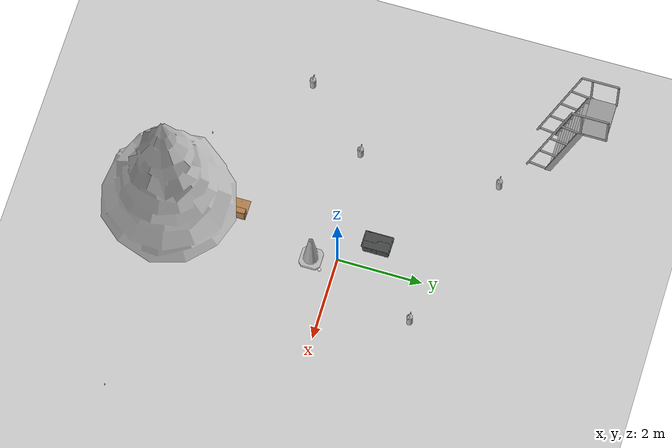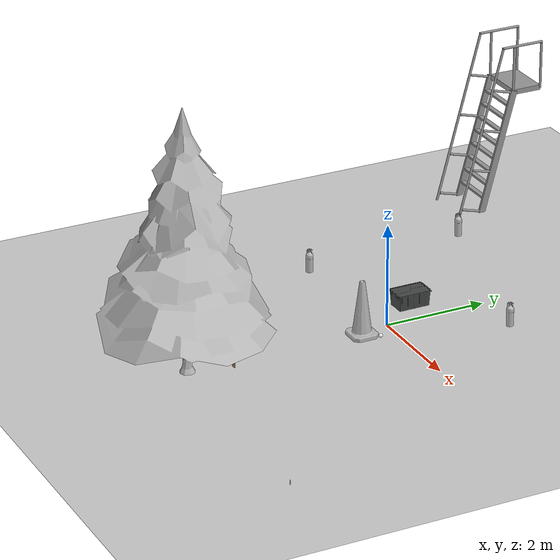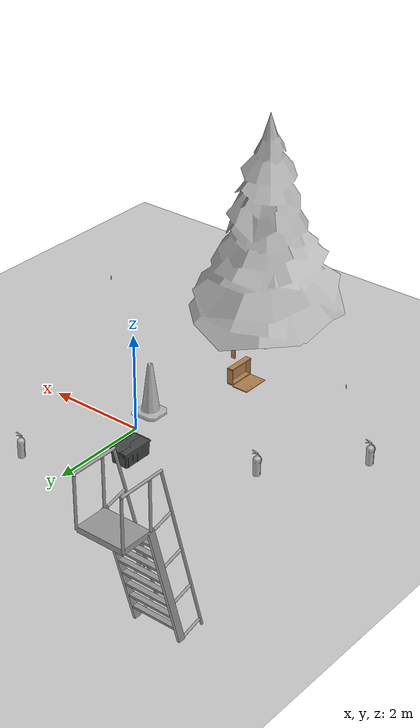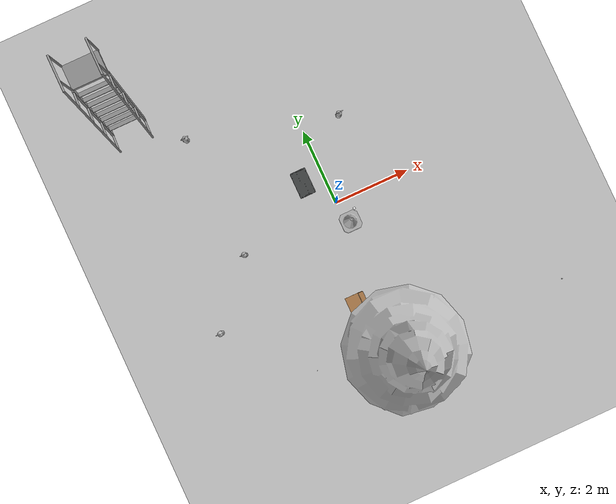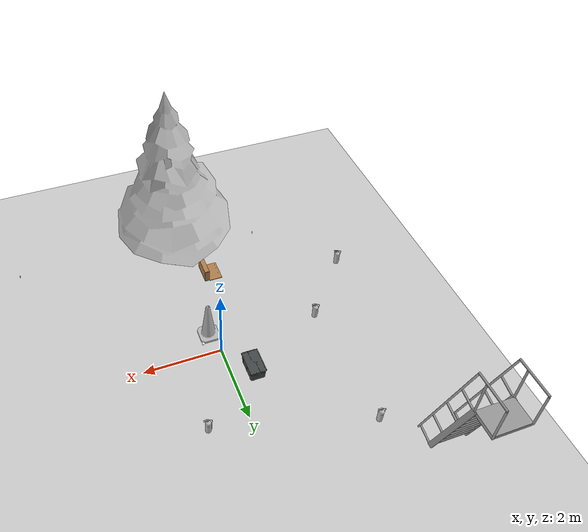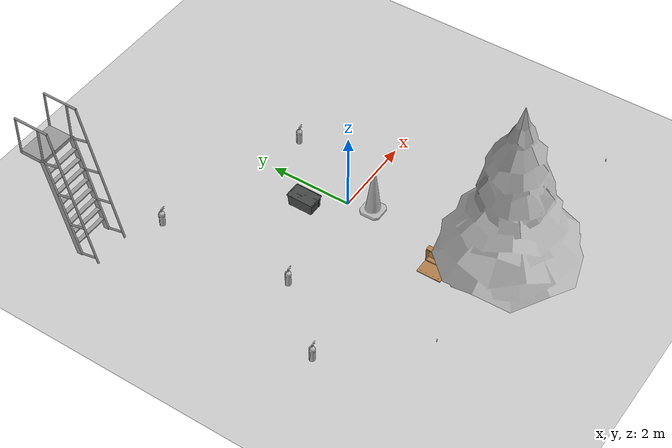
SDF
<sdf version="1.6">
 <world name="default">
  <include><uri>model://ground_plane</uri></include>
  <include><uri>model://sun</uri><pose>0 0 10 0 -0 0</pose></include>
  <spherical_coordinates>
   <surface_model>EARTH_WGS84</surface_model>
   <latitude_deg>38.161479</latitude_deg>
   <longitude_deg>-122.454630</longitude_deg>
   <elevation>488.0</elevation>
   <heading_deg>180</heading_deg>
  </spherical_coordinates>
  <physics type="ode">
   <real_time_update_rate>1000.0</real_time_update_rate>
   <max_step_size>0.001</max_step_size>
   <real_time_factor>1</real_time_factor>
   <ode>
    <solver>
     <type>quick</type>
     <iters>150</iters>
     <precon_iters>0</precon_iters>
     <sor>1.400000</sor>
     <use_dynamic_moi_rescaling>1</use_dynamic_moi_rescaling>
    </solver>
    <constraints>
     <cfm>0.00001</cfm>
     <erp>0.2</erp>
     <contact_max_correcting_vel>2000.000000</contact_max_correcting_vel>
     <contact_surface_layer>0.01000</contact_surface_layer>
    </constraints>
   </ode>
  </physics>
  <model name="sohwagi_0"><pose>1 2 0 0 0 0</pose><include><uri>model://sohwagi</uri></include></model>
  <model name="sohwagi_1">
   <pose>-2.787710 3.040580 0 0 0 0</pose>
   <include><uri>model://sohwagi</uri></include>
  </model>
  <model name="sohwagi_2">
   <pose>-4.026260 -1.791360 0 0 0 0</pose>
   <include><uri>model://sohwagi</uri></include>
  </model>
  <model name="sohwagi_3">
   <pose>-2.655270 -0.239181 0 0 0 0</pose>
   <include><uri>model://sohwagi</uri></include>
  </model>
  <model name="Construction Cone">
   <pose>0.136484 -0.585239 0 0 0 0</pose>
   <include><uri>model://construction_cone</uri></include>
  </model>
  <model name="cricket_ball">
   <pose>0.364577 -0.338741 0.003305 -0.475853 -0.095783 0.034149</pose>
   <include><uri>model://cricket_ball</uri></include>
  </model>
  <model name="grey_tote">
   <pose>-0.565278 0.784237 0 0  0 -1.570796</pose>
   <include><uri>model://grey_tote</uri></include>
  </model>
  <model name="wooden_case">
   <pose>-0.402704 -2.604008 -0.001057 0 0 3.141593</pose>
   <include><uri>model://wooden_case</uri></include>
  </model>
  <model name="wooden_peg">
   <pose>-2.218990 -3.668360 0 0 0 0</pose>
   <include><uri>model://wooden_peg</uri></include>
  </model>
  <model name="wood_cube_10cm">
   <pose>4.400510 -4.159750 0 0 0 0</pose>
   <include><uri>model://wooden_peg</uri></include>
  </model>
  <model name="wooden_board">
   <pose>0.202628 -3.192450 0.164093 -1.570796 0 0</pose>
   <include><uri>model://wooden_board</uri></include>
  </model>
  <model name="pine_tree"><pose>0 -4.0 0 0 0 0</pose><include><uri>model://pine_tree</uri></include></model>
  <model name="ladder_75deg_2rails">
   <pose>-4.0 4.0 0 0 0 0</pose>
   <include><uri>model://ladder_75deg_2rails</uri></include>
  </model>
 </world>
</sdf>

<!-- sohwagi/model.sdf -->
<sdf version="1.5">
  <model name="sohwagi">
    <link name="link">
      <collision name="collision">
        <geometry>
          <mesh>
            <scale>0.1 0.1 0.1 0.1</scale>
            <uri>model://sohwagi/meshes/sohwagi.dae</uri>
          </mesh>
        </geometry>
      </collision>
      <visual name="visual">
        <geometry>
          <mesh>
            <scale>0.1 0.1 0.1 0.1</scale>
            <uri>model://sohwagi/meshes/sohwagi.dae</uri>
          </mesh>
        </geometry>
        <material>
          <script>
            <uri>model://sohwagi/materials/scripts</uri>
            <uri>model://sohwagi/materials/textures</uri>
            <name>sohwagi/Diffuse</name>
          </script>
        </material>
      </visual>
    </link>
  </model>
</sdf>

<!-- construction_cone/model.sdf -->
<sdf version="1.5">
  <model name="Construction Cone">
    <link name="link">
      <collision name="collision">
        <geometry>
          <mesh>
            <scale>10 10 10</scale>
            <uri>file://isr-testbed/construction_cone/meshes/construction_cone.dae</uri>
          </mesh>
        </geometry>
      </collision>
      <visual name="visual">
        <geometry>
          <mesh>
            <scale>10 10 10</scale>
            <uri>file://isr-testbed/construction_cone/meshes/construction_cone.dae</uri>
          </mesh>
        </geometry>
      </visual>
    </link>
  </model>
</sdf>

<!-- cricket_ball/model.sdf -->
<sdf version="1.5">
  <model name="cricket_ball">
    <link name="link">
      <pose>0 0 0.0375 0 0 0</pose>
      <inertial>
        <mass>0.1467</mass>
        <inertia>
          <ixx>8.251875e-05</ixx>
          <ixy>0</ixy>
          <ixz>0</ixz>
          <iyy>8.251875e-05</iyy>
          <iyz>0</iyz>
          <izz>8.251875e-05</izz>
        </inertia>
      </inertial>

      <collision name="collision">
        <geometry>
          <sphere>
            <radius>0.0375</radius>
          </sphere>
        </geometry>
        <surface>
          <contact>
            <!-- Red Pine coefficients for longitudinal axis of the wood
                 according to:
                 http://www.fpl.fs.fed.us/documnts/fplgtr/fplgtr113/ch04.pdf -->
            <poissons_ratio>0.347</poissons_ratio>
            <elastic_modulus>8.8e+09</elastic_modulus>
            <ode>
              <kp>100000</kp>
              <kd>100</kd>
              <max_vel>100.0</max_vel>
              <min_depth>0.001</min_depth>
            </ode>
          </contact>
          <friction>
            <torsional>
              <coefficient>1.0</coefficient>
              <use_patch_radius>0</use_patch_radius>
              <surface_radius>0.01</surface_radius>
            </torsional>
          </friction>
        </surface>
      </collision>

      <visual name="visual">
        <geometry>
          <sphere>
            <radius>0.0375</radius>
          </sphere>
        </geometry>
        <material><diffuse>1 1 1 1</diffuse><specular>0.1 0.1 0.1 1</specular></material>
      </visual>

      <!-- approximate rolling friction -->
      <velocity_decay>
        <linear>0.00</linear>
        <angular>0.005</angular>
      </velocity_decay>
    </link>
  </model>
</sdf>

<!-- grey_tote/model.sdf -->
<sdf version="1.5">
  <model name="grey_tote">
    <link name="link">
      <inertial>
        <pose>0 0 0.141549545 0 0 0</pose>
        <mass>3.53802</mass>
        <inertia>
          <ixx>0.068835836</ixx>
          <ixy>0</ixy>
          <ixz>0</ixz>
          <iyy>0.139596236</iyy>
          <iyz>0</iyz>
          <izz>0.155908748</izz>
        </inertia>
      </inertial>

      <collision name="lid">
        <pose>0 0 0.28958 0 0 0</pose>
        <geometry>
          <box>
            <size>0.67768 0.41298 0.01588</size>
          </box>
        </geometry>
      </collision>

      <collision name="lid_lip_1">
        <pose>0 0.20063 0.3048 0 0 0</pose>
        <geometry>
          <box>
            <size>0.65068 0.0105 0.0127</size>
          </box>
        </geometry>
      </collision>

      <collision name="lid_lip_2">
        <pose>0 -0.20063 0.3048 0 0 0</pose>
        <geometry>
          <box>
            <size>0.65068 0.0105 0.0127</size>
          </box>
        </geometry>
      </collision>

      <collision name="lid_lip_3">
        <pose>0.32585 0 0.3048 0 0 0</pose>
        <geometry>
          <box>
            <size>0.02602 0.31202 0.0127</size>
          </box>
        </geometry>
      </collision>

      <collision name="lid_lip_4">
        <pose>-0.32585 0 0.3048 0 0 0</pose>
        <geometry>
          <box>
            <size>0.02602 0.31202 0.0127</size>
          </box>
        </geometry>
      </collision>

      <collision name="side_wall_1">
        <pose>0 -0.18 0.141549545 0.0611474431 0 0</pose>
        <geometry>
          <box>
            <size>0.58404 0.02602 0.28309909</size>
          </box>
        </geometry>
      </collision>

      <collision name="side_wall_2">
        <pose>0 0.18 0.141549545 -0.0611474431 0 0</pose>
        <geometry>
          <box>
            <size>0.58404 0.02602 0.28309909</size>
          </box>
        </geometry>
      </collision>

      <collision name="side_wall_3">
        <pose>0.305 0 0.141549545 0 0.0611474431 0</pose>
        <geometry>
          <box>
            <size>0.02602 0.33046 0.28309909</size>
          </box>
        </geometry>
      </collision>

      <collision name="side_wall_4">
        <pose>-0.305 0 0.141549545 0 -0.0611474431 0</pose>
        <geometry>
          <box>
            <size>0.02602 0.33046 0.28309909</size>
          </box>
        </geometry>
      </collision>

      <collision name="bottom">
        <pose>0 0 0.01 0 0 0</pose>
        <geometry>
          <box>
            <size>0.58404 0.33046 0.02</size>
          </box>
        </geometry>
      </collision>

      <collision name="corner_1">
        <pose>0.30202 -0.175 0.141549545 0.0611474431 0.0611474431 0</pose>
        <geometry>
          <cylinder>
            <radius>0.01268</radius>
            <length>0.28309909</length>
          </cylinder>
        </geometry>
      </collision>

      <collision name="corner_2">
        <pose>-0.30202 -0.175 0.141549545 0.0611474431 -0.0611474431 0</pose>
        <geometry>
          <cylinder>
            <radius>0.01268</radius>
            <length>0.28309909</length>
          </cylinder>
        </geometry>
      </collision>

      <collision name="corner_3">
        <pose>-0.30202 0.175 0.141549545 -0.0611474431 -0.0611474431 0</pose>
        <geometry>
          <cylinder>
            <radius>0.01268</radius>
            <length>0.28309909</length>
          </cylinder>
        </geometry>
      </collision>

      <collision name="corner_4">
        <pose>0.30202 0.175 0.141549545 -0.0611474431 0.0611474431 0</pose>
        <geometry>
          <cylinder>
            <radius>0.01268</radius>
            <length>0.28309909</length>
          </cylinder>
        </geometry>
      </collision>

      <visual name="visual">
        <geometry>
          <mesh>
            <uri>model://grey_tote/meshes/tote.dae</uri>
          </mesh>
        </geometry>
      </visual>
    </link>
  </model>
</sdf>

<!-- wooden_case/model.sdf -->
<sdf version="1.5">
  <model name="wooden_case">
    <link name="base">

      <pose>0 0 0.024  0 0 0</pose>
      <inertial>
        <pose>-0.02218446808213116 0.0 0.17159249678128843  0 0 0</pose>
        <mass>3.9626366887499986</mass>
        <inertia>
          <ixx>0.2135364168029657</ixx>
          <ixy>0.0</ixy>
          <ixz>0.0007793770806417083</ixz>
          <iyy>0.07089428398599372</iyy>
          <iyz>0.0</iyz>
          <izz>0.15460392299497075</izz>
        </inertia>
      </inertial>

      <collision name="collision_back">
        <pose>-0.053975 0 0.17779999999999999  0 0 0</pose>
        <geometry>
          <box>
            <size>0.019049999999999997 0.5460999999999999 0.3175</size>
          </box>
        </geometry>
        <surface>
          <contact>

            <poissons_ratio>0.347</poissons_ratio>
            <elastic_modulus>8.8e+09</elastic_modulus>
            <ode>
              <kp>100000</kp>
              <kd>100</kd>
              <max_vel>100.0</max_vel>
              <min_depth>0.001</min_depth>
            </ode>
          </contact>
          <friction>
            <torsional>
              <coefficient>1.0</coefficient>
              <use_patch_radius>0</use_patch_radius>
              <surface_radius>0.01</surface_radius>
            </torsional>
          </friction>
        </surface>
      </collision>
      <visual name="visual_back">
        <pose>-0.053975 0 0.17779999999999999  0 0 0</pose>
        <geometry>
          <box>
            <size>0.019049999999999997 0.5460999999999999 0.3175</size>
          </box>
        </geometry>
        <material>
          <script>
            <uri>model://media/materials/scripts/gazebo.material</uri>
            <name>Gazebo/Wood</name>
          </script>
        </material>
      </visual>

      <collision name="collision_bottom">
        <pose>0 0 0.009524999999999999  0 0 0</pose>
        <geometry>
          <box>
            <size>0.127 0.5841999999999999 0.019049999999999997</size>
          </box>
        </geometry>
        <surface>
          <contact>

            <poissons_ratio>0.347</poissons_ratio>
            <elastic_modulus>8.8e+09</elastic_modulus>
            <ode>
              <kp>100000</kp>
              <kd>100</kd>
              <max_vel>100.0</max_vel>
              <min_depth>0.001</min_depth>
            </ode>
          </contact>
          <friction>
            <torsional>
              <coefficient>1.0</coefficient>
              <use_patch_radius>0</use_patch_radius>
              <surface_radius>0.01</surface_radius>
            </torsional>
          </friction>
        </surface>
      </collision>
      <visual name="visual_bottom">
        <pose>0 0 0.009524999999999999  0 0 0</pose>
        <geometry>
          <box>
            <size>0.127 0.5841999999999999 0.019049999999999997</size>
          </box>
        </geometry>
        <material>
          <script>
            <uri>model://media/materials/scripts/gazebo.material</uri>
            <name>Gazebo/Wood</name>
          </script>
        </material>
      </visual>

      <collision name="collision_top">
        <pose>0 0 0.34607499999999997  0 0 0</pose>
        <geometry>
          <box>
            <size>0.127 0.5841999999999999 0.019049999999999997</size>
          </box>
        </geometry>
        <surface>
          <contact>

            <poissons_ratio>0.347</poissons_ratio>
            <elastic_modulus>8.8e+09</elastic_modulus>
            <ode>
              <kp>100000</kp>
              <kd>100</kd>
              <max_vel>100.0</max_vel>
              <min_depth>0.001</min_depth>
            </ode>
          </contact>
          <friction>
            <torsional>
              <coefficient>1.0</coefficient>
              <use_patch_radius>0</use_patch_radius>
              <surface_radius>0.01</surface_radius>
            </torsional>
          </friction>
        </surface>
      </collision>
      <visual name="visual_top">
        <pose>0 0 0.34607499999999997  0 0 0</pose>
        <geometry>
          <box>
            <size>0.127 0.5841999999999999 0.019049999999999997</size>
          </box>
        </geometry>
        <material>
          <script>
            <uri>model://media/materials/scripts/gazebo.material</uri>
            <name>Gazebo/Wood</name>
          </script>
        </material>
      </visual>

      <collision name="collision_left">
        <pose>0 -0.28257499999999997 0.17779999999999999  0 0 0</pose>
        <geometry>
          <box>
            <size>0.127 0.019049999999999997 0.3175</size>
          </box>
        </geometry>
        <surface>
          <contact>

            <poissons_ratio>0.347</poissons_ratio>
            <elastic_modulus>8.8e+09</elastic_modulus>
            <ode>
              <kp>100000</kp>
              <kd>100</kd>
              <max_vel>100.0</max_vel>
              <min_depth>0.001</min_depth>
            </ode>
          </contact>
          <friction>
            <torsional>
              <coefficient>1.0</coefficient>
              <use_patch_radius>0</use_patch_radius>
              <surface_radius>0.01</surface_radius>
            </torsional>
          </friction>
        </surface>
      </collision>
      <visual name="visual_left">
        <pose>0 -0.28257499999999997 0.17779999999999999  0 0 0</pose>
        <geometry>
          <box>
            <size>0.127 0.019049999999999997 0.3175</size>
          </box>
        </geometry>
        <material>
          <script>
            <uri>model://media/materials/scripts/gazebo.material</uri>
            <name>Gazebo/Wood</name>
          </script>
        </material>
      </visual>

      <collision name="collision_right">
        <pose>0 0.28257499999999997 0.17779999999999999  0 0 0</pose>
        <geometry>
          <box>
            <size>0.127 0.019049999999999997 0.3175</size>
          </box>
        </geometry>
        <surface>
          <contact>

            <poissons_ratio>0.347</poissons_ratio>
            <elastic_modulus>8.8e+09</elastic_modulus>
            <ode>
              <kp>100000</kp>
              <kd>100</kd>
              <max_vel>100.0</max_vel>
              <min_depth>0.001</min_depth>
            </ode>
          </contact>
          <friction>
            <torsional>
              <coefficient>1.0</coefficient>
              <use_patch_radius>0</use_patch_radius>
              <surface_radius>0.01</surface_radius>
            </torsional>
          </friction>
        </surface>
      </collision>
      <visual name="visual_right">
        <pose>0 0.28257499999999997 0.17779999999999999  0 0 0</pose>
        <geometry>
          <box>
            <size>0.127 0.019049999999999997 0.3175</size>
          </box>
        </geometry>
        <material>
          <script>
            <uri>model://media/materials/scripts/gazebo.material</uri>
            <name>Gazebo/Wood</name>
          </script>
        </material>
      </visual>

      <collision name="collision_block_left">
        <pose>0.009500000000000001 -0.21509999999999996 -0.012  0 0 0</pose>
        <geometry>
          <box>
            <size>0.108 0.05 0.024</size>
          </box>
        </geometry>
        <surface>
          <contact>

            <poissons_ratio>0.347</poissons_ratio>
            <elastic_modulus>8.8e+09</elastic_modulus>
            <ode>
              <kp>100000</kp>
              <kd>100</kd>
              <max_vel>100.0</max_vel>
              <min_depth>0.001</min_depth>
            </ode>
          </contact>
          <friction>
            <torsional>
              <coefficient>1.0</coefficient>
              <use_patch_radius>0</use_patch_radius>
              <surface_radius>0.01</surface_radius>
            </torsional>
          </friction>
        </surface>
      </collision>
      <visual name="visual_block_left">
        <pose>0.009500000000000001 -0.21509999999999996 -0.012  0 0 0</pose>
        <geometry>
          <box>
            <size>0.108 0.05 0.024</size>
          </box>
        </geometry>
        <material>
          <script>
            <uri>model://media/materials/scripts/gazebo.material</uri>
            <name>Gazebo/Wood</name>
          </script>
        </material>
      </visual>

      <collision name="collision_block_right">
        <pose>0.009500000000000001 0.21509999999999996 -0.012  0 0 0</pose>
        <geometry>
          <box>
            <size>0.108 0.05 0.024</size>
          </box>
        </geometry>
        <surface>
          <contact>

            <poissons_ratio>0.347</poissons_ratio>
            <elastic_modulus>8.8e+09</elastic_modulus>
            <ode>
              <kp>100000</kp>
              <kd>100</kd>
              <max_vel>100.0</max_vel>
              <min_depth>0.001</min_depth>
            </ode>
          </contact>
          <friction>
            <torsional>
              <coefficient>1.0</coefficient>
              <use_patch_radius>0</use_patch_radius>
              <surface_radius>0.01</surface_radius>
            </torsional>
          </friction>
        </surface>
      </collision>
      <visual name="visual_block_right">
        <pose>0.009500000000000001 0.21509999999999996 -0.012  0 0 0</pose>
        <geometry>
          <box>
            <size>0.108 0.05 0.024</size>
          </box>
        </geometry>
        <material>
          <script>
            <uri>model://media/materials/scripts/gazebo.material</uri>
            <name>Gazebo/Wood</name>
          </script>
        </material>
      </visual>

    </link>

    <link name="lid">

      <pose>0.24377499999999996 0 0.009524999999999999  0 0 0</pose>
      <inertial>
        <mass>1.9787379779999992</mass>
        <inertia>
          <ixx>0.05633673842708405</ixx>
          <ixy>0</ixy>
          <ixz>0</ixz>
          <iyy>0.020911016446734258</iyy>
          <iyz>0</iyz>
          <izz>0.07712807338064145</izz>
        </inertia>
      </inertial>
      <collision name="collision">
        <geometry>
          <box>
            <size>0.35559999999999997 0.5841999999999999 0.019049999999999997</size>
          </box>
        </geometry>
        <surface>
          <contact>

            <poissons_ratio>0.347</poissons_ratio>
            <elastic_modulus>8.8e+09</elastic_modulus>
            <ode>
              <kp>100000</kp>
              <kd>100</kd>
              <max_vel>100.0</max_vel>
              <min_depth>0.001</min_depth>
            </ode>
          </contact>
          <friction>
            <torsional>
              <coefficient>1.0</coefficient>
              <use_patch_radius>0</use_patch_radius>
              <surface_radius>0.01</surface_radius>
            </torsional>
          </friction>
        </surface>
      </collision>
      <visual name="visual">
        <geometry>
          <box>
            <size>0.35559999999999997 0.5841999999999999 0.019049999999999997</size>
          </box>
        </geometry>
        <material>
          <script>
            <uri>model://media/materials/scripts/gazebo.material</uri>
            <name>Gazebo/Wood</name>
          </script>
        </material>
      </visual>

      <visual name="tee_nut_1">
        <pose>0.122 -0.216 0.0  0 0 0</pose>
        <geometry>
          <cylinder>
            <radius>0.00635</radius>
            <length>0.019240499999999997</length>
          </cylinder>
        </geometry>
        <material>
          <script>
            <uri>model://media/materials/scripts/gazebo.material</uri>
            <name>Gazebo/Grey</name>
          </script>
        </material>
      </visual>

      <visual name="tee_nut_2">
        <pose>0.122 -0.088 0.0  0 0 0</pose>
        <geometry>
          <cylinder>
            <radius>0.00635</radius>
            <length>0.019240499999999997</length>
          </cylinder>
        </geometry>
        <material>
          <script>
            <uri>model://media/materials/scripts/gazebo.material</uri>
            <name>Gazebo/Grey</name>
          </script>
        </material>
      </visual>

      <visual name="tee_nut_3">
        <pose>0.122 0.088 0.0  0 0 0</pose>
        <geometry>
          <cylinder>
            <radius>0.00635</radius>
            <length>0.019240499999999997</length>
          </cylinder>
        </geometry>
        <material>
          <script>
            <uri>model://media/materials/scripts/gazebo.material</uri>
            <name>Gazebo/Grey</name>
          </script>
        </material>
      </visual>

      <visual name="tee_nut_4">
        <pose>0.122 0.216 0.0  0 0 0</pose>
        <geometry>
          <cylinder>
            <radius>0.00635</radius>
            <length>0.019240499999999997</length>
          </cylinder>
        </geometry>
        <material>
          <script>
            <uri>model://media/materials/scripts/gazebo.material</uri>
            <name>Gazebo/Grey</name>
          </script>
        </material>
      </visual>

    </link>

    <joint name="lid_hinge" type="revolute">
      <pose>-0.17779999999999999 0 0.019049999999999997  0 0 0</pose>
      <parent>base</parent>
      <child>lid</child>
      <axis>
        <xyz>0 1 0</xyz>
        <limit>
          <upper>0.5235987755982988</upper>
          <lower>-1.5707963267948966</lower>
        </limit>
      </axis>
    </joint>

  </model>
</sdf>

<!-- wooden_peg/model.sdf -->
<sdf version="1.5">
  <model name="wooden_peg">
    <link name="link">
      <pose>0 0 0.04 0 0 0</pose>
      <inertial>
        <mass>0.0175</mass>
        <inertia>
          <ixx>9.749231770833334e-06</ixx>
          <ixy>0</ixy>
          <ixz>0</ixz>
          <iyy>9.749231770833334e-06</iyy>
          <iyz>0</iyz>
          <izz>8.317968750000001e-07</izz>
        </inertia>
      </inertial>

      <collision name="collision">
        <geometry>
          <cylinder>
            <radius> 0.00975 </radius>
            <length> 0.08 </length>
          </cylinder>
        </geometry>
        <surface>
          <contact>
            <!-- Red Pine coefficients for longitudinal axis of the wood
                 according to:
                 http://www.fpl.fs.fed.us/documnts/fplgtr/fplgtr113/ch04.pdf -->
            <poissons_ratio>0.347</poissons_ratio>
            <elastic_modulus>8.8e+09</elastic_modulus>
            <ode>
              <kp>100000</kp>
              <kd>100</kd>
              <max_vel>100.0</max_vel>
              <min_depth>0.001</min_depth>
            </ode>
          </contact>
          <friction>
            <torsional>
              <coefficient>1.0</coefficient>
              <use_patch_radius>0</use_patch_radius>
              <surface_radius>0.01</surface_radius>
            </torsional>
          </friction>
        </surface>
      </collision>

      <visual name="visual">
        <geometry>
          <cylinder>
            <radius> 0.00975 </radius>
            <length> 0.08 </length>
          </cylinder>
        </geometry>
        <material><diffuse>1 1 1 1</diffuse><specular>0.1 0.1 0.1 1</specular></material>
      </visual>

    </link>
  </model>
</sdf>

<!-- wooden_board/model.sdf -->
<sdf version="1.5">
  <model name="wooden_board">
    <link name="base">

      <pose>0 0 0.00523 0 0 0</pose>
      <inertial>
        <mass>0.2765</mass>
        <inertia>
          <ixx>0.0025148009472833336</ixx>
          <ixy>0</ixy>
          <ixz>0</ixz>
          <iyy>0.00024037001228333334</iyy>
          <iyz>0</iyz>
          <izz>0.002750128908333333</izz>
        </inertia>
      </inertial>

      <collision name="collision">
        <geometry>
          <box>
            <size>0.1016 0.3302 0.01046</size>
          </box>
        </geometry>
        <surface>
          <contact>
            <!-- Red Pine coefficients for longitudinal axis of the wood
                 according to:
                 http://www.fpl.fs.fed.us/documnts/fplgtr/fplgtr113/ch04.pdf -->
            <poissons_ratio>0.347</poissons_ratio>
            <elastic_modulus>8.8e+09</elastic_modulus>
            <ode>
              <kp>100000</kp>
              <kd>100</kd>
              <max_vel>100.0</max_vel>
              <min_depth>0.001</min_depth>
            </ode>
          </contact>
          <friction>
            <torsional>
              <coefficient>1.0</coefficient>
              <use_patch_radius>0</use_patch_radius>
              <surface_radius>0.01</surface_radius>
            </torsional>
          </friction>
        </surface>
      </collision>

      <visual name="visual">
        <geometry>
          <box>
            <size>0.1016 0.3302 0.01046</size>
          </box>
        </geometry>
        <material>
          <script>
            <uri>file://media/materials/scripts/gazebo.material</uri>
            <name>Gazebo/Wood</name>
          </script>
        </material>
      </visual>

      <visual name='tee_nut_1'>
        <pose>0.0 -0.116 0.0  0 0 0</pose>
        <geometry>
          <cylinder>
            <radius>0.00635</radius>
            <length>0.0105646</length>
          </cylinder>
        </geometry>
        <material>
          <script>
            <uri>file://media/materials/scripts/gazebo.material</uri>
            <name>Gazebo/Grey</name>
          </script>
        </material>
      </visual>

      <visual name='tee_nut_2'>
        <pose>0.0 -0.038 0.0  0 0 0</pose>
        <geometry>
          <cylinder>
            <radius>0.00635</radius>
            <length>0.0105646</length>
          </cylinder>
        </geometry>
        <material>
          <script>
            <uri>file://media/materials/scripts/gazebo.material</uri>
            <name>Gazebo/Grey</name>
          </script>
        </material>
      </visual>

      <visual name='tee_nut_3'>
        <pose>0.0 0.038 0.0  0 0 0</pose>
        <geometry>
          <cylinder>
            <radius>0.00635</radius>
            <length>0.0105646</length>
          </cylinder>
        </geometry>
        <material>
          <script>
            <uri>file://media/materials/scripts/gazebo.material</uri>
            <name>Gazebo/Grey</name>
          </script>
        </material>
      </visual>

      <visual name='tee_nut_4'>
        <pose>0.0 0.116 0.0  0 0 0</pose>
        <geometry>
          <cylinder>
            <radius>0.00635</radius>
            <length>0.0105646</length>
          </cylinder>
        </geometry>
        <material>
          <script>
            <uri>file://media/materials/scripts/gazebo.material</uri>
            <name>Gazebo/Grey</name>
          </script>
        </material>
      </visual>

    </link>

  </model>
</sdf>

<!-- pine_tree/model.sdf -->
<sdf version="1.6">
  <model name="pine_tree">
    <static>true</static>
    <link name="link">
      <collision name="collision">
        <geometry>
          <mesh>
            <uri>file://isr-testbed/pine_tree/meshes/pine_tree.dae</uri>
          </mesh>
        </geometry>
      </collision>
      <visual name="branch">
        <geometry>
          <mesh>
            <uri>file://isr-testbed/pine_tree/meshes/pine_tree.dae</uri>
            <submesh>
              <name>Branch</name>
            </submesh>
          </mesh>
        </geometry>
        <material>
          <script>
            <uri>file://isr-testbed/pine_tree/materials/scripts/</uri>
            <uri>file://isr-testbed/pine_tree/materials/textures/</uri>
            <name>PineTree/Branch</name>
          </script>
        </material>
      </visual>
      <visual name="bark">
        <geometry>
          <mesh>
            <uri>file://isr-testbed/pine_tree/meshes/pine_tree.dae</uri>
            <submesh>
              <name>Bark</name>
            </submesh>
          </mesh>
        </geometry>
        <material>
          <script>
            <uri>file://isr-testbed/pine_tree/materials/scripts/</uri>
            <uri>file://isr-testbed/pine_tree/materials/textures/</uri>
            <name>PineTree/Bark</name>
          </script>
        </material>
      </visual>
    </link>
  </model>
</sdf>

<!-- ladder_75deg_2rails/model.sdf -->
<sdf version="1.5">

  <model name= "ladder_75deg_2rails" >
    <static>true</static>
         <link name="step0" >
           <pose>0 0.07145311798163272 0.26666666666666666 0 0 0 </pose>
           <inertial>
             <mass> 9.7548192</mass>
             <inertia>
             <ixx> 0.009571241631672</ixx>
             <iyy> 0.6596303120915761</iyy>
             <izz> 0.666841521540096</izz>
             <ixy>0</ixy>
             <ixz>0</ixz>
             <iyz>0</iyz>
             </inertia>
           </inertial>

           <collision name="collision">
             <geometry>
              <box>
                <size>  0.9  0.1016  0.0381  </size>
              </box>
             </geometry>
           </collision>

          <visual name="visual">
            <geometry>
              <box>
                <size>  0.9  0.1016  0.0381  </size>
              </box>
            </geometry>
            <material>
              <script>
                <uri>file://media/materials/scripts/gazebo.material</uri>
                <name>Gazebo/Grey</name>
              </script>
            </material>
          </visual>
        </link>
         <link name="step1" >
           <pose>0 0.14290623596326543 0.5333333333333333 0 0 0 </pose>
           <inertial>
             <mass> 9.7548192</mass>
             <inertia>
             <ixx> 0.009571241631672</ixx>
             <iyy> 0.6596303120915761</iyy>
             <izz> 0.666841521540096</izz>
             <ixy>0</ixy>
             <ixz>0</ixz>
             <iyz>0</iyz>
             </inertia>
           </inertial>

           <collision name="collision">
             <geometry>
              <box>
                <size>  0.9  0.1016  0.0381  </size>
              </box>
             </geometry>
           </collision>

          <visual name="visual">
            <geometry>
              <box>
                <size>  0.9  0.1016  0.0381  </size>
              </box>
            </geometry>
            <material>
              <script>
                <uri>file://media/materials/scripts/gazebo.material</uri>
                <name>Gazebo/Grey</name>
              </script>
            </material>
          </visual>
        </link>
         <link name="step2" >
           <pose>0 0.21435935394489813 0.8 0 0 0 </pose>
           <inertial>
             <mass> 9.7548192</mass>
             <inertia>
             <ixx> 0.009571241631672</ixx>
             <iyy> 0.6596303120915761</iyy>
             <izz> 0.666841521540096</izz>
             <ixy>0</ixy>
             <ixz>0</ixz>
             <iyz>0</iyz>
             </inertia>
           </inertial>

           <collision name="collision">
             <geometry>
              <box>
                <size>  0.9  0.1016  0.0381  </size>
              </box>
             </geometry>
           </collision>

          <visual name="visual">
            <geometry>
              <box>
                <size>  0.9  0.1016  0.0381  </size>
              </box>
            </geometry>
            <material>
              <script>
                <uri>file://media/materials/scripts/gazebo.material</uri>
                <name>Gazebo/Grey</name>
              </script>
            </material>
          </visual>
        </link>
         <link name="step3" >
           <pose>0 0.28581247192653086 1.0666666666666667 0 0 0 </pose>
           <inertial>
             <mass> 9.7548192</mass>
             <inertia>
             <ixx> 0.009571241631672</ixx>
             <iyy> 0.6596303120915761</iyy>
             <izz> 0.666841521540096</izz>
             <ixy>0</ixy>
             <ixz>0</ixz>
             <iyz>0</iyz>
             </inertia>
           </inertial>

           <collision name="collision">
             <geometry>
              <box>
                <size>  0.9  0.1016  0.0381  </size>
              </box>
             </geometry>
           </collision>

          <visual name="visual">
            <geometry>
              <box>
                <size>  0.9  0.1016  0.0381  </size>
              </box>
            </geometry>
            <material>
              <script>
                <uri>file://media/materials/scripts/gazebo.material</uri>
                <name>Gazebo/Grey</name>
              </script>
            </material>
          </visual>
        </link>
         <link name="step4" >
           <pose>0 0.3572655899081636 1.3333333333333333 0 0 0 </pose>
           <inertial>
             <mass> 9.7548192</mass>
             <inertia>
             <ixx> 0.009571241631672</ixx>
             <iyy> 0.6596303120915761</iyy>
             <izz> 0.666841521540096</izz>
             <ixy>0</ixy>
             <ixz>0</ixz>
             <iyz>0</iyz>
             </inertia>
           </inertial>

           <collision name="collision">
             <geometry>
              <box>
                <size>  0.9  0.1016  0.0381  </size>
              </box>
             </geometry>
           </collision>

          <visual name="visual">
            <geometry>
              <box>
                <size>  0.9  0.1016  0.0381  </size>
              </box>
            </geometry>
            <material>
              <script>
                <uri>file://media/materials/scripts/gazebo.material</uri>
                <name>Gazebo/Grey</name>
              </script>
            </material>
          </visual>
        </link>
         <link name="step5" >
           <pose>0 0.42871870788979627 1.6 0 0 0 </pose>
           <inertial>
             <mass> 9.7548192</mass>
             <inertia>
             <ixx> 0.009571241631672</ixx>
             <iyy> 0.6596303120915761</iyy>
             <izz> 0.666841521540096</izz>
             <ixy>0</ixy>
             <ixz>0</ixz>
             <iyz>0</iyz>
             </inertia>
           </inertial>

           <collision name="collision">
             <geometry>
              <box>
                <size>  0.9  0.1016  0.0381  </size>
              </box>
             </geometry>
           </collision>

          <visual name="visual">
            <geometry>
              <box>
                <size>  0.9  0.1016  0.0381  </size>
              </box>
            </geometry>
            <material>
              <script>
                <uri>file://media/materials/scripts/gazebo.material</uri>
                <name>Gazebo/Grey</name>
              </script>
            </material>
          </visual>
        </link>
         <link name="step6" >
           <pose>0 0.500171825871429 1.8666666666666667 0 0 0 </pose>
           <inertial>
             <mass> 9.7548192</mass>
             <inertia>
             <ixx> 0.009571241631672</ixx>
             <iyy> 0.6596303120915761</iyy>
             <izz> 0.666841521540096</izz>
             <ixy>0</ixy>
             <ixz>0</ixz>
             <iyz>0</iyz>
             </inertia>
           </inertial>

           <collision name="collision">
             <geometry>
              <box>
                <size>  0.9  0.1016  0.0381  </size>
              </box>
             </geometry>
           </collision>

          <visual name="visual">
            <geometry>
              <box>
                <size>  0.9  0.1016  0.0381  </size>
              </box>
            </geometry>
            <material>
              <script>
                <uri>file://media/materials/scripts/gazebo.material</uri>
                <name>Gazebo/Grey</name>
              </script>
            </material>
          </visual>
        </link>
         <link name="step7" >
           <pose>0 0.5716249438530617 2.1333333333333333 0 0 0 </pose>
           <inertial>
             <mass> 9.7548192</mass>
             <inertia>
             <ixx> 0.009571241631672</ixx>
             <iyy> 0.6596303120915761</iyy>
             <izz> 0.666841521540096</izz>
             <ixy>0</ixy>
             <ixz>0</ixz>
             <iyz>0</iyz>
             </inertia>
           </inertial>

           <collision name="collision">
             <geometry>
              <box>
                <size>  0.9  0.1016  0.0381  </size>
              </box>
             </geometry>
           </collision>

          <visual name="visual">
            <geometry>
              <box>
                <size>  0.9  0.1016  0.0381  </size>
              </box>
            </geometry>
            <material>
              <script>
                <uri>file://media/materials/scripts/gazebo.material</uri>
                <name>Gazebo/Grey</name>
              </script>
            </material>
          </visual>
        </link>
    <link name="landing">
      <pose>0 0.9430780618346943 2.4 0 0 0 </pose>
        <inertial>
          <mass> 57.607200000000006</mass>
          <inertia>
          <ixx> 1.735184598966</ixx>
          <iyy> 3.8954545989660008</iyy>
          <izz> 5.616702</izz>
          <ixy>0</ixy>
          <ixz>0</ixz>
          <iyz>0</iyz>
          </inertia>
        </inertial>

        <collision name="collision">
          <geometry>
           <box>
             <size> 0.9 0.6 0.1016</size>
           </box>
          </geometry>
        </collision>

        <visual name="visual">
          <geometry>
            <box>
             <size> 0.9 0.6 0.1016</size>
            </box>
          </geometry>
          <material>
            <script>
              <uri>file://media/materials/scripts/gazebo.material</uri>
              <name>Gazebo/Grey</name>
            </script>
          </material>
        </visual>
    </link>

      <link name="left_side_wall" >
        <pose>-0.45 0.3215390309173472 1.2 1.3089969389957472 0 0 </pose>
        <collision name="collision">
          <geometry>
            <box>
              <size> 0.0508  2.564662832984199  0.13 </size>
            </box>
          </geometry>
        </collision>

        <visual name="visual">
          <geometry>
            <box>
              <size> 0.0508  2.564662832984199  0.13 </size>
            </box>
          </geometry>
          <material>
            <script>
              <uri>file://media/materials/scripts/gazebo.material</uri>
              <name>Gazebo/Grey</name>
            </script>
          </material>
        </visual>

      </link>
      <link name="right_side_wall" >
        <pose>0.45 0.3215390309173472 1.2 1.3089969389957472 0 0 </pose>
        <collision name="collision">
          <geometry>
            <box>
              <size> 0.0508  2.564662832984199  0.13 </size>
            </box>
          </geometry>
        </collision>

        <visual name="visual">
          <geometry>
            <box>
              <size> 0.0508  2.564662832984199  0.13 </size>
            </box>
          </geometry>
          <material>
            <script>
              <uri>file://media/materials/scripts/gazebo.material</uri>
              <name>Gazebo/Grey</name>
            </script>
          </material>
        </visual>

      </link>

         <link name="left_railing_long" >
           <pose>-0.45 -0.0534609690826528 1.6665063509461095 -0.26179938779914935 0 0 </pose>

            <collision name="collision">
              <geometry>
                <cylinder>
                  <radius>0.02413</radius>
                  <length>3.5152934205488977</length>
                </cylinder>
              </geometry>
            </collision>

            <visual name="visual">
              <geometry>
                <cylinder>
                  <radius>0.02413</radius>
                  <length>3.5152934205488977</length>
                </cylinder>
              </geometry>
              <material>
                <script>
                  <uri>file://media/materials/scripts/gazebo.material</uri>
                  <name>Gazebo/Grey</name>
                </script>
              </material>
            </visual>
         </link>

              <link name="left_railing_upright0" >
                <pose> -0.45 -0.21008886721787234 0.05629314230979826 1.3089969389957472 0 0 </pose>

                <collision name="collision">
                  <geometry>
                    <cylinder>
                      <radius>0.02413</radius>
                      <length>0.48296291314453416</length>
                    </cylinder>
                  </geometry>
                </collision>

                <visual name="visual">
                  <geometry>
                    <cylinder>
                      <radius>0.02413</radius>
                      <length>0.48296291314453416</length>
                    </cylinder>
                  </geometry>
                  <material>
                    <script>
                      <uri>file://media/materials/scripts/gazebo.material</uri>
                      <name>Gazebo/Grey</name>
                    </script>
                  </material>
                </visual>
              </link>
              <link name="left_railing_upright1" >
                <pose> -0.45 0.004270486727025777 0.8562931423097981 1.3089969389957472 0 0 </pose>

                <collision name="collision">
                  <geometry>
                    <cylinder>
                      <radius>0.02413</radius>
                      <length>0.48296291314453416</length>
                    </cylinder>
                  </geometry>
                </collision>

                <visual name="visual">
                  <geometry>
                    <cylinder>
                      <radius>0.02413</radius>
                      <length>0.48296291314453416</length>
                    </cylinder>
                  </geometry>
                  <material>
                    <script>
                      <uri>file://media/materials/scripts/gazebo.material</uri>
                      <name>Gazebo/Grey</name>
                    </script>
                  </material>
                </visual>
              </link>
              <link name="left_railing_upright2" >
                <pose> -0.45 0.21862984067192393 1.6562931423097982 1.3089969389957472 0 0 </pose>

                <collision name="collision">
                  <geometry>
                    <cylinder>
                      <radius>0.02413</radius>
                      <length>0.48296291314453416</length>
                    </cylinder>
                  </geometry>
                </collision>

                <visual name="visual">
                  <geometry>
                    <cylinder>
                      <radius>0.02413</radius>
                      <length>0.48296291314453416</length>
                    </cylinder>
                  </geometry>
                  <material>
                    <script>
                      <uri>file://media/materials/scripts/gazebo.material</uri>
                      <name>Gazebo/Grey</name>
                    </script>
                  </material>
                </visual>
              </link>
              <link name="left_railing_upright3" >
                <pose> -0.45 0.43298919461682206 2.4562931423097982 1.3089969389957472 0 0 </pose>

                <collision name="collision">
                  <geometry>
                    <cylinder>
                      <radius>0.02413</radius>
                      <length>0.48296291314453416</length>
                    </cylinder>
                  </geometry>
                </collision>

                <visual name="visual">
                  <geometry>
                    <cylinder>
                      <radius>0.02413</radius>
                      <length>0.48296291314453416</length>
                    </cylinder>
                  </geometry>
                  <material>
                    <script>
                      <uri>file://media/materials/scripts/gazebo.material</uri>
                      <name>Gazebo/Grey</name>
                    </script>
                  </material>
                </visual>
              </link>

         <link name="left_railing_landing_top" >

           <pose> -0.45 0.8180780618346943 3.357142701892219 1.5707963267948966 0 0 </pose>

           <collision name="collision">
             <geometry>
               <cylinder>
                 <radius>0.02413</radius>
                 <length>0.87413</length>
               </cylinder>
             </geometry>
           </collision>

           <visual name="visual">
             <geometry>
               <cylinder>
                 <radius>0.02413</radius>
                 <length>0.87413</length>
               </cylinder>
             </geometry>
             <material>
               <script>
                 <uri>file://media/materials/scripts/gazebo.material</uri>
                 <name>Gazebo/Grey</name>
               </script>
             </material>
           </visual>
         </link>

            <link name="left_railing_landing_upright_0">
              <pose>-0.45 0.6430780618346944 2.8665063509461097 0 0 0</pose>
              <collision name="collision">
                <geometry>
                  <cylinder>
                    <radius>0.02413</radius>
                    <length>0.9330127018922194</length>
                  </cylinder>
                </geometry>
              </collision>

              <visual name="visual">
                <geometry>
                  <cylinder>
                    <radius>0.02413</radius>
                    <length>0.9330127018922194</length>
                  </cylinder>
                </geometry>
                <material>
                  <script>
                    <uri>file://media/materials/scripts/gazebo.material</uri>
                    <name>Gazebo/Grey</name>
                  </script>
                </material>
              </visual>
            </link>
            <link name="left_railing_landing_upright_1">
              <pose>-0.45 1.2430780618346944 2.8665063509461097 0 0 0</pose>
              <collision name="collision">
                <geometry>
                  <cylinder>
                    <radius>0.02413</radius>
                    <length>0.9330127018922194</length>
                  </cylinder>
                </geometry>
              </collision>

              <visual name="visual">
                <geometry>
                  <cylinder>
                    <radius>0.02413</radius>
                    <length>0.9330127018922194</length>
                  </cylinder>
                </geometry>
                <material>
                  <script>
                    <uri>file://media/materials/scripts/gazebo.material</uri>
                    <name>Gazebo/Grey</name>
                  </script>
                </material>
              </visual>
            </link>

         <link name="right_railing_long" >
           <pose>0.45 -0.0534609690826528 1.6665063509461095 -0.26179938779914935 0 0 </pose>

            <collision name="collision">
              <geometry>
                <cylinder>
                  <radius>0.02413</radius>
                  <length>3.5152934205488977</length>
                </cylinder>
              </geometry>
            </collision>

            <visual name="visual">
              <geometry>
                <cylinder>
                  <radius>0.02413</radius>
                  <length>3.5152934205488977</length>
                </cylinder>
              </geometry>
              <material>
                <script>
                  <uri>file://media/materials/scripts/gazebo.material</uri>
                  <name>Gazebo/Grey</name>
                </script>
              </material>
            </visual>
         </link>

              <link name="right_railing_upright0" >
                <pose> 0.45 -0.21008886721787234 0.05629314230979826 1.3089969389957472 0 0 </pose>

                <collision name="collision">
                  <geometry>
                    <cylinder>
                      <radius>0.02413</radius>
                      <length>0.48296291314453416</length>
                    </cylinder>
                  </geometry>
                </collision>

                <visual name="visual">
                  <geometry>
                    <cylinder>
                      <radius>0.02413</radius>
                      <length>0.48296291314453416</length>
                    </cylinder>
                  </geometry>
                  <material>
                    <script>
                      <uri>file://media/materials/scripts/gazebo.material</uri>
                      <name>Gazebo/Grey</name>
                    </script>
                  </material>
                </visual>
              </link>
              <link name="right_railing_upright1" >
                <pose> 0.45 0.004270486727025777 0.8562931423097981 1.3089969389957472 0 0 </pose>

                <collision name="collision">
                  <geometry>
                    <cylinder>
                      <radius>0.02413</radius>
                      <length>0.48296291314453416</length>
                    </cylinder>
                  </geometry>
                </collision>

                <visual name="visual">
                  <geometry>
                    <cylinder>
                      <radius>0.02413</radius>
                      <length>0.48296291314453416</length>
                    </cylinder>
                  </geometry>
                  <material>
                    <script>
                      <uri>file://media/materials/scripts/gazebo.material</uri>
                      <name>Gazebo/Grey</name>
                    </script>
                  </material>
                </visual>
              </link>
              <link name="right_railing_upright2" >
                <pose> 0.45 0.21862984067192393 1.6562931423097982 1.3089969389957472 0 0 </pose>

                <collision name="collision">
                  <geometry>
                    <cylinder>
                      <radius>0.02413</radius>
                      <length>0.48296291314453416</length>
                    </cylinder>
                  </geometry>
                </collision>

                <visual name="visual">
                  <geometry>
                    <cylinder>
                      <radius>0.02413</radius>
                      <length>0.48296291314453416</length>
                    </cylinder>
                  </geometry>
                  <material>
                    <script>
                      <uri>file://media/materials/scripts/gazebo.material</uri>
                      <name>Gazebo/Grey</name>
                    </script>
                  </material>
                </visual>
              </link>
              <link name="right_railing_upright3" >
                <pose> 0.45 0.43298919461682206 2.4562931423097982 1.3089969389957472 0 0 </pose>

                <collision name="collision">
                  <geometry>
                    <cylinder>
                      <radius>0.02413</radius>
                      <length>0.48296291314453416</length>
                    </cylinder>
                  </geometry>
                </collision>

                <visual name="visual">
                  <geometry>
                    <cylinder>
                      <radius>0.02413</radius>
                      <length>0.48296291314453416</length>
                    </cylinder>
                  </geometry>
                  <material>
                    <script>
                      <uri>file://media/materials/scripts/gazebo.material</uri>
                      <name>Gazebo/Grey</name>
                    </script>
                  </material>
                </visual>
              </link>

         <link name="right_railing_landing_top" >

           <pose> 0.45 0.8180780618346943 3.357142701892219 1.5707963267948966 0 0 </pose>

           <collision name="collision">
             <geometry>
               <cylinder>
                 <radius>0.02413</radius>
                 <length>0.87413</length>
               </cylinder>
             </geometry>
           </collision>

           <visual name="visual">
             <geometry>
               <cylinder>
                 <radius>0.02413</radius>
                 <length>0.87413</length>
               </cylinder>
             </geometry>
             <material>
               <script>
                 <uri>file://media/materials/scripts/gazebo.material</uri>
                 <name>Gazebo/Grey</name>
               </script>
             </material>
           </visual>
         </link>

            <link name="right_railing_landing_upright_0">
              <pose>0.45 0.6430780618346944 2.8665063509461097 0 0 0</pose>
              <collision name="collision">
                <geometry>
                  <cylinder>
                    <radius>0.02413</radius>
                    <length>0.9330127018922194</length>
                  </cylinder>
                </geometry>
              </collision>

              <visual name="visual">
                <geometry>
                  <cylinder>
                    <radius>0.02413</radius>
                    <length>0.9330127018922194</length>
                  </cylinder>
                </geometry>
                <material>
                  <script>
                    <uri>file://media/materials/scripts/gazebo.material</uri>
                    <name>Gazebo/Grey</name>
                  </script>
                </material>
              </visual>
            </link>
            <link name="right_railing_landing_upright_1">
              <pose>0.45 1.2430780618346944 2.8665063509461097 0 0 0</pose>
              <collision name="collision">
                <geometry>
                  <cylinder>
                    <radius>0.02413</radius>
                    <length>0.9330127018922194</length>
                  </cylinder>
                </geometry>
              </collision>

              <visual name="visual">
                <geometry>
                  <cylinder>
                    <radius>0.02413</radius>
                    <length>0.9330127018922194</length>
                  </cylinder>
                </geometry>
                <material>
                  <script>
                    <uri>file://media/materials/scripts/gazebo.material</uri>
                    <name>Gazebo/Grey</name>
                  </script>
                </material>
              </visual>
            </link>

  </model>
</sdf>
